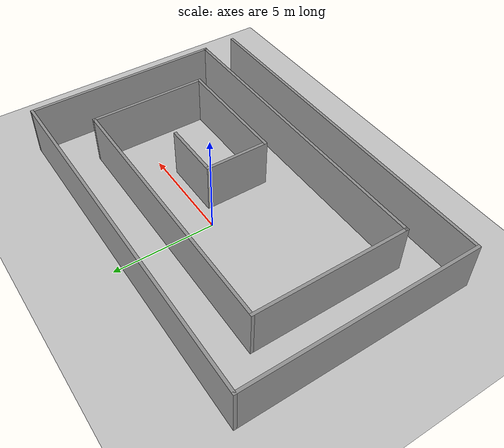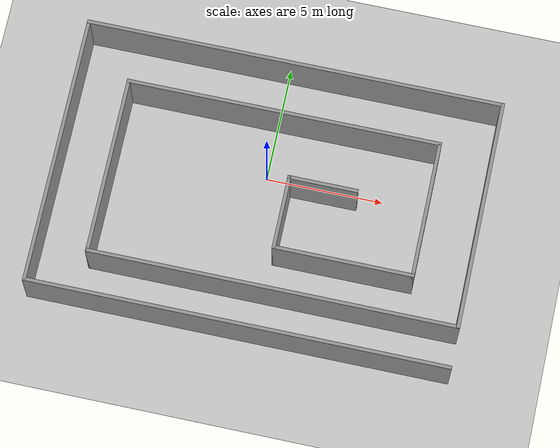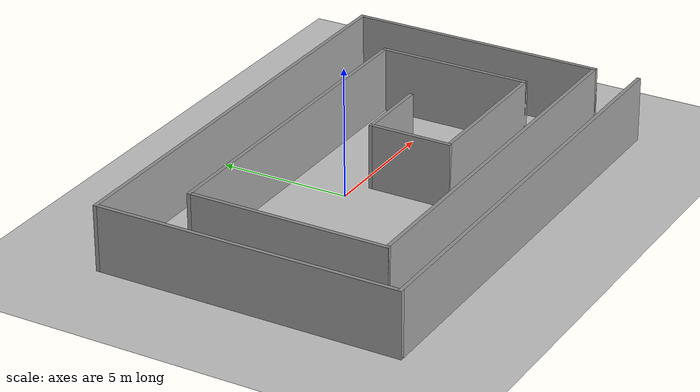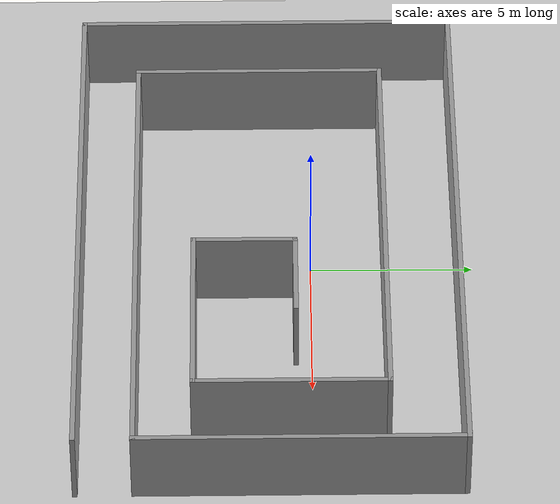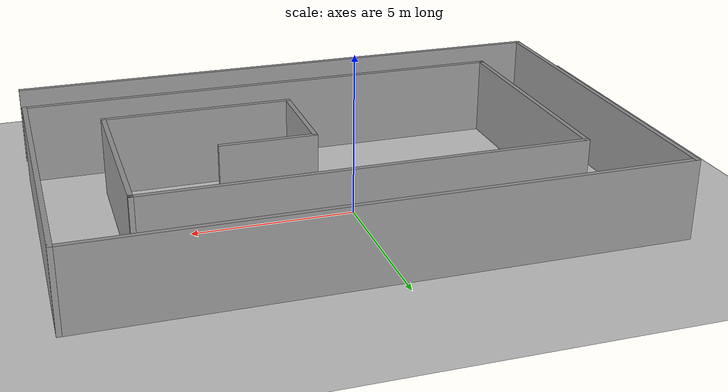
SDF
<sdf version="1.6">
 <world name="default">
  <light name="sun" type="directional">
   <pose>0 0 10 0 -0 0</pose>
   <diffuse>0.8 0.8 0.8 1</diffuse>
   <specular>0.2 0.2 0.2 1</specular>
   <attenuation>
    <range>1000</range>
    <constant>0.9</constant>
    <linear>0.01</linear>
    <quadratic>0.001</quadratic>
   </attenuation>
   <direction>-0.5 0.1 -0.9</direction>
  </light>
  <model name="ground_plane">
   <static>1</static>
   <link name="link">
    <collision name="collision">
     <geometry><plane><normal>0 0 1</normal><size>100 100</size></plane></geometry>
     <surface><friction><ode><mu>100</mu><mu2>50</mu2></ode></friction></surface>
    </collision>
    <visual name="visual">
     <cast_shadows>0</cast_shadows>
     <geometry><plane><normal>0 0 1</normal><size>100 100</size></plane></geometry>
     <material>
      <script><uri>file://media/materials/scripts/gazebo.material</uri><name>Gazebo/Grey</name></script>
     </material>
    </visual>
   </link>
  </model>
  <gravity>0 0 -9.8</gravity>
  <magnetic_field>6e-06 2.3e-05 -4.2e-05</magnetic_field>
  <atmosphere type="adiabatic"/>
  <physics name="default_physics" default="0" type="ode">
   <max_step_size>0.001</max_step_size>
   <real_time_factor>1</real_time_factor>
   <real_time_update_rate>1000</real_time_update_rate>
  </physics>
  <scene><ambient>0.4 0.4 0.4 1</ambient><background>0.7 0.7 0.7 1</background><shadows>1</shadows></scene>
  <spherical_coordinates>
   <surface_model>EARTH_WGS84</surface_model>
   <latitude_deg>0</latitude_deg>
   <longitude_deg>0</longitude_deg>
   <elevation>0</elevation>
   <heading_deg>0</heading_deg>
  </spherical_coordinates>
  <model name="test">
   <pose>0.235097 -1.28815 0 0 -0 0</pose>
   <link name="Wall_0">
    <collision name="Wall_0_Collision">
     <geometry><box><size>3 0.15 2.5</size></box></geometry>
     <pose>0 0 1.25 0 -0 0</pose>
    </collision>
    <visual name="Wall_0_Visual">
     <pose>0 0 1.25 0 -0 0</pose>
     <geometry><box><size>3 0.15 2.5</size></box></geometry>
     <material>
      <script><uri>file://media/materials/scripts/gazebo.material</uri><name>Gazebo/Grey</name></script>
      <ambient>1 1 1 1</ambient>
     </material>
     <meta><layer>0</layer></meta>
    </visual>
    <pose>2.25 0.8 0 0 -0 3.14159</pose>
   </link>
   <link name="Wall_1">
    <collision name="Wall_1_Collision">
     <geometry><box><size>3.25 0.15 2.5</size></box></geometry>
     <pose>0 0 1.25 0 -0 0</pose>
    </collision>
    <visual name="Wall_1_Visual">
     <pose>0 0 1.25 0 -0 0</pose>
     <geometry><box><size>3.25 0.15 2.5</size></box></geometry>
     <material>
      <script><uri>file://media/materials/scripts/gazebo.material</uri><name>Gazebo/Grey</name></script>
      <ambient>1 1 1 1</ambient>
     </material>
     <meta><layer>0</layer></meta>
    </visual>
    <pose>0.825 -0.75 0 0 -0 -1.5708</pose>
   </link>
   <link name="Wall_10">
    <collision name="Wall_10_Collision">
     <geometry><box><size>18 0.15 2.5</size></box></geometry>
     <pose>0 0 1.25 0 -0 0</pose>
    </collision>
    <visual name="Wall_10_Visual">
     <pose>0 0 1.25 0 -0 0</pose>
     <geometry><box><size>18 0.15 2.5</size></box></geometry>
     <material>
      <script><uri>file://media/materials/scripts/gazebo.material</uri><name>Gazebo/Grey</name></script>
      <ambient>1 1 1 1</ambient>
     </material>
     <meta><layer>0</layer></meta>
    </visual>
    <pose>-0 -5.8 0 0 -0 0</pose>
   </link>
   <link name="Wall_2">
    <collision name="Wall_2_Collision">
     <geometry><box><size>6 0.15 2.5</size></box></geometry>
     <pose>0 0 1.25 0 -0 0</pose>
    </collision>
    <visual name="Wall_2_Visual">
     <pose>0 0 1.25 0 -0 0</pose>
     <geometry><box><size>6 0.15 2.5</size></box></geometry>
     <material>
      <script><uri>file://media/materials/scripts/gazebo.material</uri><name>Gazebo/Grey</name></script>
      <ambient>1 1 1 1</ambient>
     </material>
     <meta><layer>0</layer></meta>
    </visual>
    <pose>3.75 -2.3 0 0 -0 0</pose>
   </link>
   <link name="Wall_3">
    <collision name="Wall_3_Collision">
     <geometry><box><size>6 0.15 2.5</size></box></geometry>
     <pose>0 0 1.25 0 -0 0</pose>
    </collision>
    <visual name="Wall_3_Visual">
     <pose>0 0 1.25 0 -0 0</pose>
     <geometry><box><size>6 0.15 2.5</size></box></geometry>
     <material>
      <script><uri>file://media/materials/scripts/gazebo.material</uri><name>Gazebo/Grey</name></script>
      <ambient>1 1 1 1</ambient>
     </material>
     <meta><layer>0</layer></meta>
    </visual>
    <pose>6.675 0.625 0 0 -0 1.5708</pose>
   </link>
   <link name="Wall_4">
    <collision name="Wall_4_Collision">
     <geometry><box><size>13.5 0.15 2.5</size></box></geometry>
     <pose>0 0 1.25 0 -0 0</pose>
    </collision>
    <visual name="Wall_4_Visual">
     <pose>0 0 1.25 0 -0 0</pose>
     <geometry><box><size>13.5 0.15 2.5</size></box></geometry>
     <material>
      <script><uri>file://media/materials/scripts/gazebo.material</uri><name>Gazebo/Grey</name></script>
      <ambient>1 1 1 1</ambient>
     </material>
     <meta><layer>0</layer></meta>
    </visual>
    <pose>-0 3.55 0 0 -0 3.14159</pose>
   </link>
   <link name="Wall_5">
    <collision name="Wall_5_Collision">
     <geometry><box><size>7.75 0.15 2.5</size></box></geometry>
     <pose>0 0 1.25 0 -0 0</pose>
    </collision>
    <visual name="Wall_5_Visual">
     <pose>0 0 1.25 0 -0 0</pose>
     <geometry><box><size>7.75 0.15 2.5</size></box></geometry>
     <material>
      <script><uri>file://media/materials/scripts/gazebo.material</uri><name>Gazebo/Grey</name></script>
      <ambient>1 1 1 1</ambient>
     </material>
     <meta><layer>0</layer></meta>
    </visual>
    <pose>-6.675 -0.25 0 0 -0 -1.5708</pose>
   </link>
   <link name="Wall_6">
    <collision name="Wall_6_Collision">
     <geometry><box><size>15.75 0.15 2.5</size></box></geometry>
     <pose>0 0 1.25 0 -0 0</pose>
    </collision>
    <visual name="Wall_6_Visual">
     <pose>0 0 1.25 0 -0 0</pose>
     <geometry><box><size>15.75 0.15 2.5</size></box></geometry>
     <material>
      <script><uri>file://media/materials/scripts/gazebo.material</uri><name>Gazebo/Grey</name></script>
      <ambient>1 1 1 1</ambient>
     </material>
     <meta><layer>0</layer></meta>
    </visual>
    <pose>1.125 -4.05 0 0 -0 0</pose>
   </link>
   <link name="Wall_7">
    <collision name="Wall_7_Collision">
     <geometry><box><size>10 0.15 2.5</size></box></geometry>
     <pose>0 0 1.25 0 -0 0</pose>
    </collision>
    <visual name="Wall_7_Visual">
     <pose>0 0 1.25 0 -0 0</pose>
     <geometry><box><size>10 0.15 2.5</size></box></geometry>
     <material>
      <script><uri>file://media/materials/scripts/gazebo.material</uri><name>Gazebo/Grey</name></script>
      <ambient>1 1 1 1</ambient>
     </material>
     <meta><layer>0</layer></meta>
    </visual>
    <pose>8.925 0.875 0 0 -0 1.5708</pose>
   </link>
   <link name="Wall_8">
    <collision name="Wall_8_Collision">
     <geometry><box><size>18 0.15 2.5</size></box></geometry>
     <pose>0 0 1.25 0 -0 0</pose>
    </collision>
    <visual name="Wall_8_Visual">
     <pose>0 0 1.25 0 -0 0</pose>
     <geometry><box><size>18 0.15 2.5</size></box></geometry>
     <material>
      <script><uri>file://media/materials/scripts/gazebo.material</uri><name>Gazebo/Grey</name></script>
      <ambient>1 1 1 1</ambient>
     </material>
     <meta><layer>0</layer></meta>
    </visual>
    <pose>-0 5.8 0 0 -0 3.14159</pose>
   </link>
   <link name="Wall_9">
    <collision name="Wall_9_Collision">
     <geometry><box><size>11.75 0.15 2.5</size></box></geometry>
     <pose>0 0 1.25 0 -0 0</pose>
    </collision>
    <visual name="Wall_9_Visual">
     <pose>0 0 1.25 0 -0 0</pose>
     <geometry><box><size>11.75 0.15 2.5</size></box></geometry>
     <material>
      <script><uri>file://media/materials/scripts/gazebo.material</uri><name>Gazebo/Grey</name></script>
      <ambient>1 1 1 1</ambient>
     </material>
     <meta><layer>0</layer></meta>
    </visual>
    <pose>-8.925 0 0 0 -0 -1.5708</pose>
   </link>
   <static>1</static>
  </model>
 </world>
</sdf>
